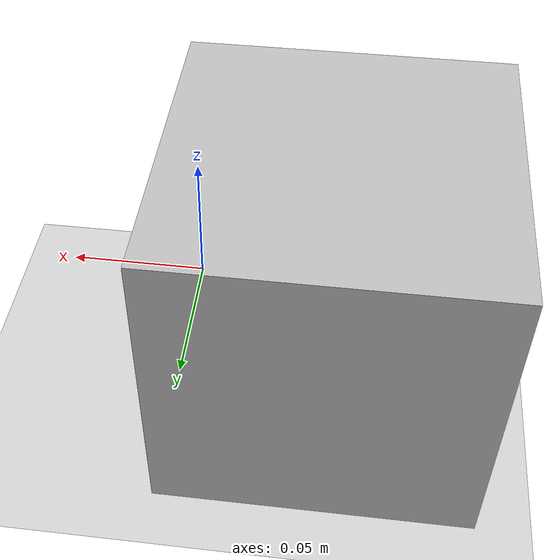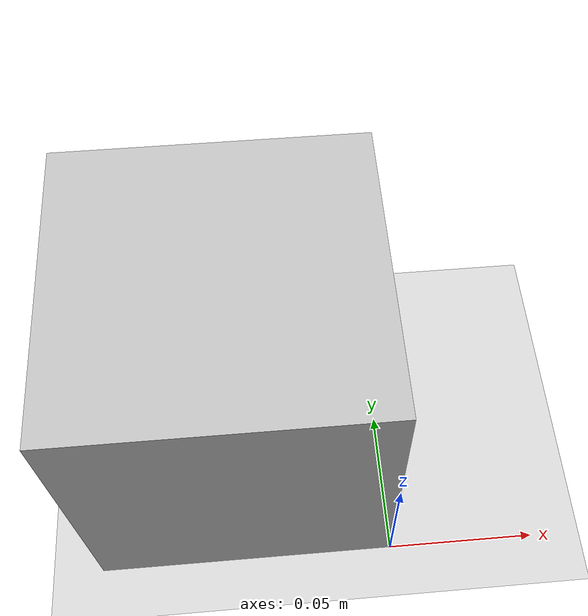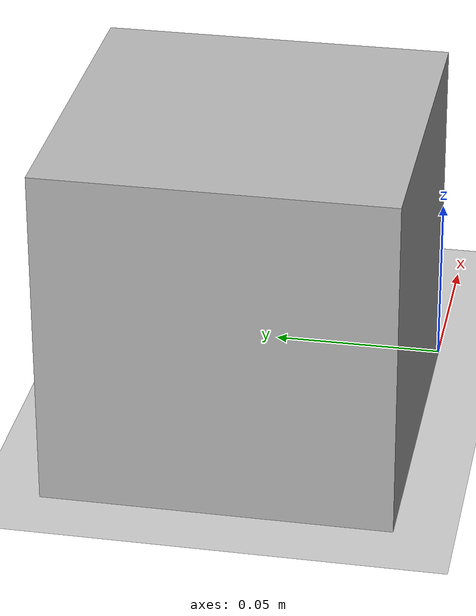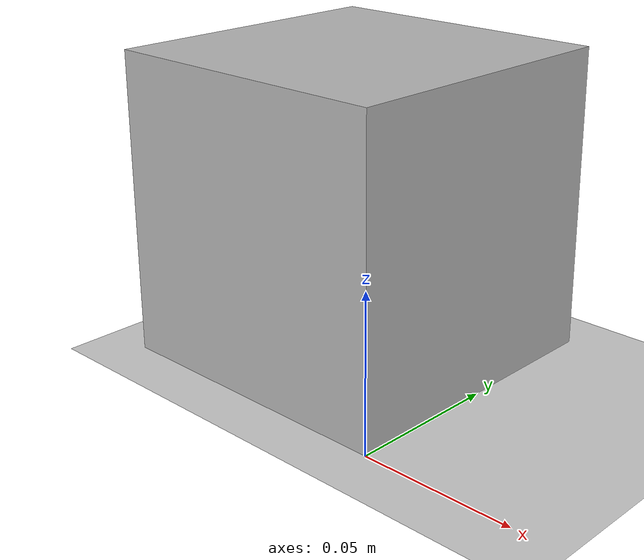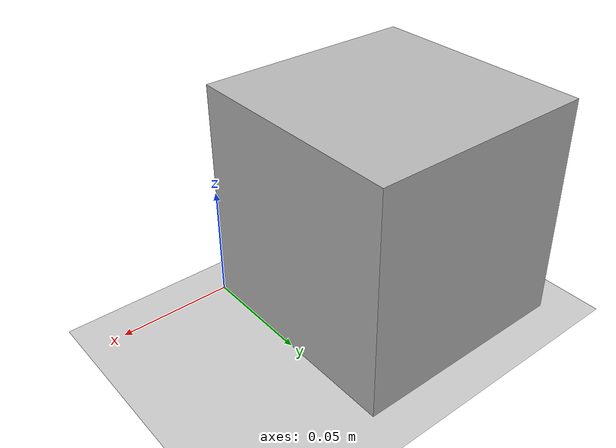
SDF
<?xml version="1.0" ?>
<sdf version="1.6">
  <world name="sensors">
    <physics name="1ms" type="ignored">
      <max_step_size>0.001</max_step_size>
      <real_time_factor>1.0</real_time_factor>
    </physics>
    <plugin
      filename="gz-sim-physics-system"
      name="gz::sim::systems::Physics">
    </plugin>
    <plugin
      filename="gz-sim-imu-system"
      name="gz::sim::systems::Imu">
    </plugin>
    <plugin
      filename="gz-sim-magnetometer-system"
      name="gz::sim::systems::Magnetometer">
    </plugin>
    <plugin
      filename="gz-sim-user-commands-system"
      name="gz::sim::systems::UserCommands">
    </plugin>
    <plugin
      filename="gz-sim-scene-broadcaster-system"
      name="gz::sim::systems::SceneBroadcaster">
    </plugin>

    <spherical_coordinates>
      <surface_model>EARTH_WGS84</surface_model>
      <world_frame_orientation>ENU</world_frame_orientation>
      <latitude_deg>-31.640061833333334</latitude_deg>
      <longitude_deg>-60.67209583333333</longitude_deg>
      <elevation>44.4</elevation>
      <heading_deg>0.0</heading_deg>
    </spherical_coordinates>

    <light type="directional" name="sun">
      <cast_shadows>true</cast_shadows>
      <pose>0 0 10 0 0 0</pose>
      <diffuse>0.8 0.8 0.8 1</diffuse>
      <specular>0.2 0.2 0.2 1</specular>
      <attenuation>
        <range>1000</range>
        <constant>0.9</constant>
        <linear>0.01</linear>
        <quadratic>0.001</quadratic>
      </attenuation>
      <direction>-0.5 0.1 -0.9</direction>
    </light>

    <model name="ground_plane">
      <static>true</static>
      <link name="link">
        <collision name="collision">
          <geometry>
            <plane>
              <normal>0 0 1</normal>
              <size>100 100</size>
            </plane>
          </geometry>
        </collision>
        <visual name="visual">
          <geometry>
            <plane>
              <normal>0 0 1</normal>
              <size>100 100</size>
            </plane>
          </geometry>
          <material>
            <ambient>0.8 0.8 0.8 1</ambient>
            <diffuse>0.8 0.8 0.8 1</diffuse>
            <specular>0.8 0.8 0.8 1</specular>
          </material>
        </visual>
      </link>
    </model>

    <model name="sensors_box">
      <!-- Here I will try 4 different poses -->
      <pose>0 0 0 0 0 1.570796</pose>
      <link name="link">
        <pose>0.05 0.05 0.05 0 0 0</pose>
        <inertial>
          <mass>0.1</mass>
          <inertia>
            <ixx>0.000166667</ixx>
            <iyy>0.000166667</iyy>
            <izz>0.000166667</izz>
          </inertia>
        </inertial>
        <collision name="collision">
          <geometry>
            <box>
              <size>0.1 0.1 0.1</size>
            </box>
          </geometry>
        </collision>
        <visual name="visual">
          <geometry>
            <box>
              <size>0.1 0.1 0.1</size>
            </box>
          </geometry>
        </visual>
        <sensor name="imu" type="imu">
          <always_on>1</always_on>
          <update_rate>100</update_rate>
          <visualize>true</visualize>
          <topic>imu</topic>
          <enable_metrics>true</enable_metrics>
        </sensor>
        <sensor name="magnetometer" type="magnetometer">
          <always_on>1</always_on>
          <update_rate>100</update_rate>
          <visualize>true</visualize>
          <topic>magnetometer</topic>
          <enable_metrics>true</enable_metrics>
          <magnetometer>
            <x>
              <noise type="gaussian">
                <mean>0.0</mean>
                <stddev>0.0</stddev>
              </noise>
            </x>
            <y>
              <noise type="gaussian">
                <mean>0.0</mean>
                <stddev>0.0</stddev>
              </noise>
            </y>
            <z>
              <noise type="gaussian">
                <mean>0.0</mean>
                <stddev>0.0</stddev>
              </noise>
            </z>
          </magnetometer>
        </sensor>
      </link>
    </model>

  </world>
</sdf>
